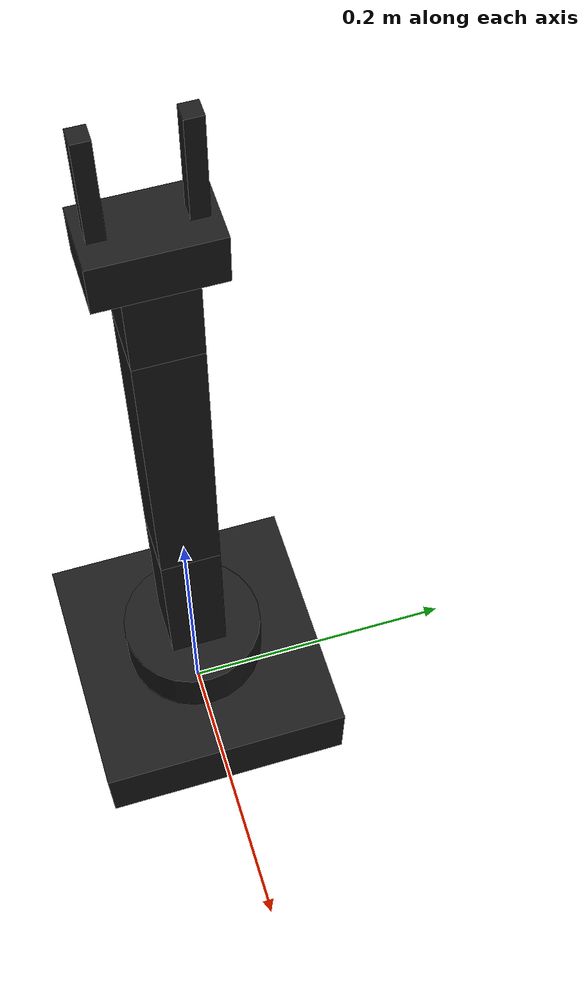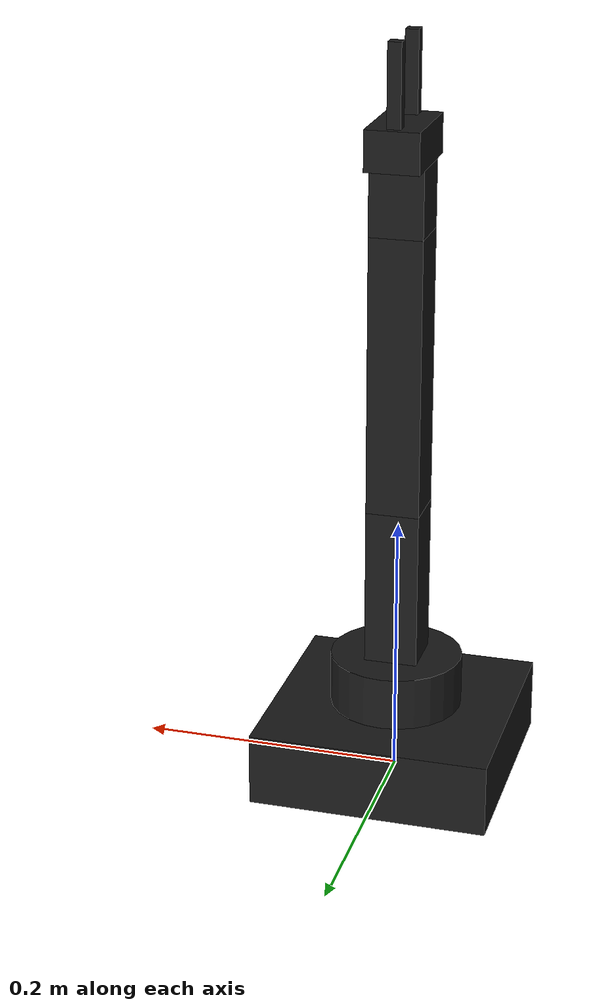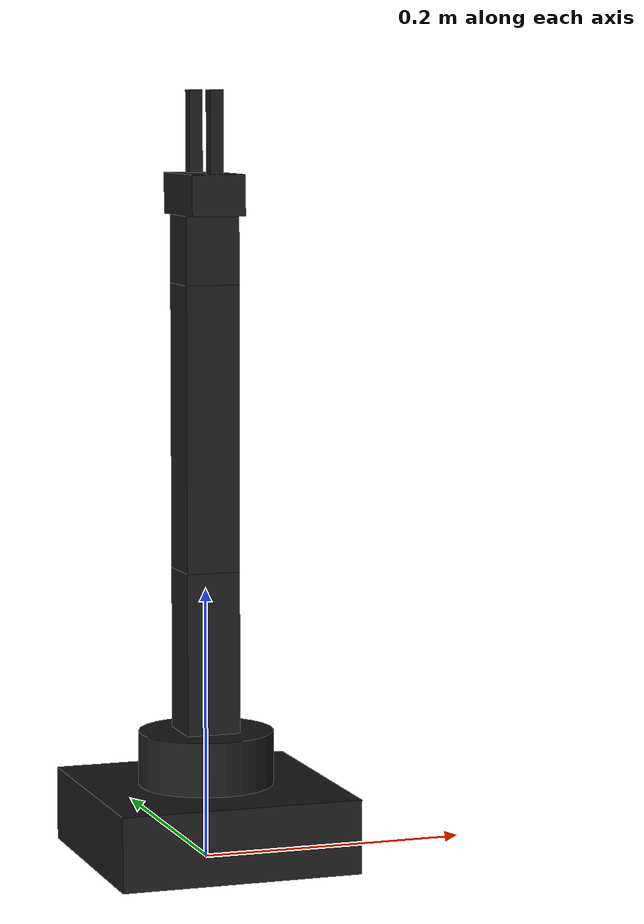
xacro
<?xml version="1.0"?>
<robot xmlns:xacro="http://www.ros.org/wiki/xacro" name="arm_robot">

  <material name="black"><color rgba="0.1 0.1 0.1 1"/></material>

  <xacro:property name="base_h" value="0.055"/>  <xacro:property name="L1_z" value="0.04"/>    <xacro:property name="L2_len" value="0.12"/>   <xacro:property name="L3_len" value="0.21"/>   <xacro:property name="L4_len" value="0.05"/>   <xacro:property name="finger_len" value="0.06"/> <link name="base_link">
    <visual>
      <geometry><box size="0.18 0.18 ${base_h}"/></geometry>
      <origin xyz="0 0 ${base_h/2}"/><material name="black"/>
    </visual>
  </link>

  <link name="link1">
    <visual>
      <geometry><cylinder radius="0.05" length="${L1_z}"/></geometry>
      <origin xyz="0 0 ${L1_z/2}"/><material name="black"/>
    </visual>
  </link>

  <link name="link2">
    <visual>
      <geometry><box size="0.04 0.04 ${L2_len}"/></geometry>
      <origin xyz="0 0 ${L2_len/2}"/><material name="black"/>
    </visual>
  </link>

  <link name="link3_fixed">
    <visual>
      <geometry><box size="0.04 0.04 ${L3_len}"/></geometry>
      <origin xyz="0 0 ${L3_len/2}"/><material name="black"/>
    </visual>
  </link>

  <link name="link4_rotating_assembly">
    <visual>
      <geometry><box size="0.04 0.04 ${L4_len}"/></geometry>
      <origin xyz="0 0 ${L4_len/2}"/><material name="black"/>
    </visual>
  </link>

  <link name="gripper_base">
    <visual>
      <geometry><box size="0.04 0.07 0.03"/></geometry>
      <origin xyz="0 0 0.015"/><material name="black"/>
    </visual>
  </link>

  <xacro:macro name="finger" params="name side">
    <link name="${name}">
      <visual>
        <geometry><box size="0.01 0.01 ${finger_len}"/></geometry>
        <origin xyz="0 ${side * 0.01} ${finger_len/2}"/><material name="black"/>
      </visual>
    </link>
  </xacro:macro>

  <xacro:finger name="finger_left" side="1"/>
  <xacro:finger name="finger_right" side="-1"/>

  <joint name="joint_1_waist" type="revolute">
    <parent link="base_link"/><child link="link1"/>
    <origin xyz="0 0 ${base_h}"/><axis xyz="0 0 1"/>
    <limit lower="-3.14" upper="3.14" effort="10" velocity="1"/>
  </joint>

  <joint name="joint_2_shoulder" type="revolute">
    <parent link="link1"/><child link="link2"/>
    <origin xyz="0 0 ${L1_z}"/><axis xyz="0 1 0"/>
    <limit lower="-1.57" upper="1.57" effort="10" velocity="1"/>
  </joint>

  <joint name="joint_3_elbow" type="revolute">
    <parent link="link2"/><child link="link3_fixed"/>
    <origin xyz="0 0 ${L2_len}"/><axis xyz="0 1 0"/>
    <limit lower="-1.8" upper="1.8" effort="10" velocity="1"/>
  </joint>

  <joint name="joint_4_wrist_roll" type="revolute">
    <parent link="link3_fixed"/>
    <child link="link4_rotating_assembly"/>
    <origin xyz="0 0 ${L3_len}"/>
    <axis xyz="0 0 1"/> <limit lower="-3.14" upper="3.14" effort="10" velocity="1.5"/>
  </joint>

  <joint name="joint_5_gripper_pitch" type="revolute">
    <parent link="link4_rotating_assembly"/>
    <child link="gripper_base"/>
    <origin xyz="0 0 ${L4_len}"/>
    <axis xyz="0 1 0"/>
    <limit lower="-1.57" upper="1.57" effort="10" velocity="1"/>
  </joint>

  <joint name="joint_gripper_left" type="revolute">
    <parent link="gripper_base"/>
    <child link="finger_left"/>
    <origin xyz="0 0.015 0.03"/>
    <axis xyz="1 0 0"/>
    <limit lower="0" upper="1.0" effort="5" velocity="1"/>
  </joint>

  <joint name="joint_gripper_right" type="revolute">
    <parent link="gripper_base"/>
    <child link="finger_right"/>
    <origin xyz="0 -0.015 0.03"/>
    <axis xyz="-1 0 0"/>
    <limit lower="0" upper="1.0" effort="5" velocity="1"/>
    <mimic joint="joint_gripper_left"/>
  </joint>

</robot>
